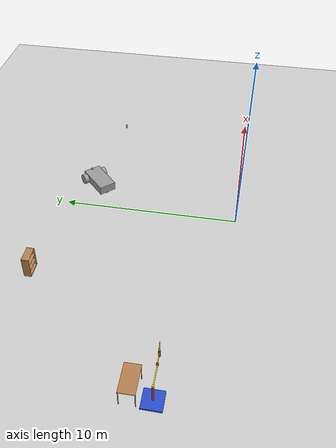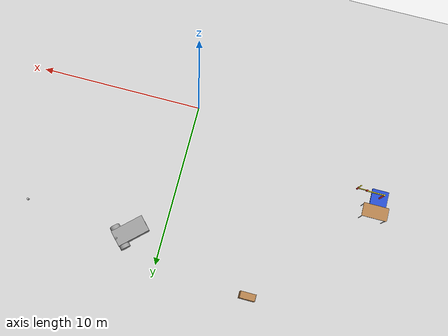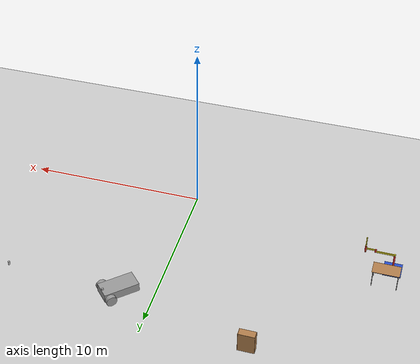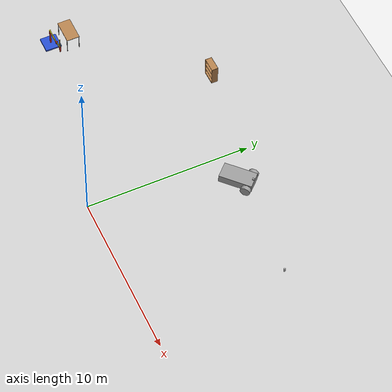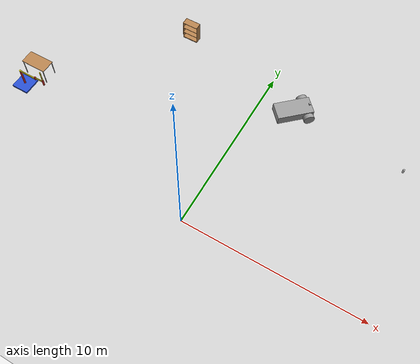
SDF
<sdf version="1.6">
 <world name="default">
  <model name="ground_plane">
   <static>1</static>
   <link name="link">
    <collision name="collision">
     <geometry><plane><normal>0 0 1</normal><size>100 100</size></plane></geometry>
     <surface>
      <contact><collide_bitmask>65535</collide_bitmask></contact>
      <friction><ode><mu>100</mu><mu2>50</mu2></ode></friction>
     </surface>
    </collision>
    <visual name="visual">
     <cast_shadows>0</cast_shadows>
     <geometry><plane><normal>0 0 1</normal><size>100 100</size></plane></geometry>
     <material>
      <script><uri>file://media/materials/scripts/gazebo.material</uri><name>Gazebo/Grey</name></script>
     </material>
    </visual>
   </link>
  </model>
  <model name="robot_car_0">
   <link name="link_1">
    <pose>-0.303354 -0.001131 0.03138 0 -0 0</pose>
    <inertial>
     <mass>1</mass>
     <inertia>
      <ixx>0.166667</ixx>
      <ixy>0</ixy>
      <ixz>0</ixz>
      <iyy>0.166667</iyy>
      <iyz>0</iyz>
      <izz>0.166667</izz>
     </inertia>
    </inertial>
    <visual name="visual">
     <geometry><box><size>2 1 0.5</size></box></geometry>
     <material>
      <lighting>1</lighting>
      <script><uri>file://media/materials/scripts/gazebo.material</uri><name>Gazebo/Grey</name></script>
      <shader type="pixel"><normal_map>__default__</normal_map></shader>
      <ambient>0.3 0.3 0.3 1</ambient>
      <diffuse>0.7 0.7 0.7 1</diffuse>
      <specular>0.01 0.01 0.01 1</specular>
      <emissive>0 0 0 1</emissive>
     </material>
    </visual>
    <collision name="collision">
     <geometry><box><size>2 1 0.5</size></box></geometry>
     <surface>
      <friction>
       <ode><mu>1</mu><mu2>1</mu2><fdir1>0 0 0</fdir1><slip1>0</slip1><slip2>0</slip2></ode>
       <torsional>
        <coefficient>1</coefficient>
        <patch_radius>0</patch_radius>
        <surface_radius>0</surface_radius>
        <use_patch_radius>1</use_patch_radius>
        <ode><slip>0</slip></ode>
       </torsional>
      </friction>
      <bounce><restitution_coefficient>0</restitution_coefficient><threshold>1e+06</threshold></bounce>
      <contact>
       <collide_without_contact>0</collide_without_contact>
       <collide_without_contact_bitmask>1</collide_without_contact_bitmask>
       <collide_bitmask>1</collide_bitmask>
       <ode>
        <soft_cfm>0</soft_cfm>
        <soft_erp>0.2</soft_erp>
        <kp>1e+13</kp>
        <kd>1</kd>
        <max_vel>0.01</max_vel>
        <min_depth>0</min_depth>
       </ode>
       <bullet>
        <split_impulse>1</split_impulse>
        <split_impulse_penetration_threshold>-0.01</split_impulse_penetration_threshold>
        <soft_cfm>0</soft_cfm>
        <soft_erp>0.2</soft_erp>
        <kp>1e+13</kp>
        <kd>1</kd>
       </bullet>
      </contact>
     </surface>
    </collision>
   </link>
   <link name="link_2">
    <pose>0.396646 -0.62616 -0.06862 1.5707 -0 0</pose>
    <inertial>
     <mass>1</mass>
     <inertia><ixx>0.145833</ixx><ixy>0</ixy><ixz>0</ixz><iyy>0.145833</iyy><iyz>0</iyz><izz>0.125</izz></inertia>
    </inertial>
    <visual name="visual">
     <geometry><cylinder><radius>0.3</radius><length>0.25</length></cylinder></geometry>
     <material>
      <lighting>1</lighting>
      <script><uri>file://media/materials/scripts/gazebo.material</uri><name>Gazebo/Grey</name></script>
      <shader type="pixel"><normal_map>__default__</normal_map></shader>
      <ambient>0.3 0.3 0.3 1</ambient>
      <diffuse>0.7 0.7 0.7 1</diffuse>
      <specular>0.01 0.01 0.01 1</specular>
      <emissive>0 0 0 1</emissive>
     </material>
    </visual>
    <collision name="collision">
     <geometry><cylinder><radius>0.3</radius><length>0.25</length></cylinder></geometry>
     <surface>
      <friction>
       <ode><mu>1</mu><mu2>1</mu2><fdir1>0 0 0</fdir1><slip1>0</slip1><slip2>0</slip2></ode>
       <torsional>
        <coefficient>1</coefficient>
        <patch_radius>0</patch_radius>
        <surface_radius>0</surface_radius>
        <use_patch_radius>1</use_patch_radius>
        <ode><slip>0</slip></ode>
       </torsional>
      </friction>
      <bounce><restitution_coefficient>0</restitution_coefficient><threshold>1e+06</threshold></bounce>
      <contact>
       <collide_without_contact>0</collide_without_contact>
       <collide_without_contact_bitmask>1</collide_without_contact_bitmask>
       <collide_bitmask>1</collide_bitmask>
       <ode>
        <soft_cfm>0</soft_cfm>
        <soft_erp>0.2</soft_erp>
        <kp>1e+13</kp>
        <kd>1</kd>
        <max_vel>0.01</max_vel>
        <min_depth>0</min_depth>
       </ode>
       <bullet>
        <split_impulse>1</split_impulse>
        <split_impulse_penetration_threshold>-0.01</split_impulse_penetration_threshold>
        <soft_cfm>0</soft_cfm>
        <soft_erp>0.2</soft_erp>
        <kp>1e+13</kp>
        <kd>1</kd>
       </bullet>
      </contact>
     </surface>
    </collision>
   </link>
   <link name="link_2_clone">
    <pose>0.396646 0.623898 -0.06862 1.5707 -0 0</pose>
    <inertial>
     <mass>1</mass>
     <inertia><ixx>0.145833</ixx><ixy>0</ixy><ixz>0</ixz><iyy>0.145833</iyy><iyz>0</iyz><izz>0.125</izz></inertia>
    </inertial>
    <visual name="visual">
     <geometry><cylinder><radius>0.3</radius><length>0.25</length></cylinder></geometry>
     <material>
      <lighting>1</lighting>
      <script><uri>file://media/materials/scripts/gazebo.material</uri><name>Gazebo/Grey</name></script>
      <shader type="pixel"><normal_map>__default__</normal_map></shader>
      <ambient>0.3 0.3 0.3 1</ambient>
      <diffuse>0.7 0.7 0.7 1</diffuse>
      <specular>0.01 0.01 0.01 1</specular>
      <emissive>0 0 0 1</emissive>
     </material>
    </visual>
    <collision name="collision">
     <geometry><cylinder><radius>0.3</radius><length>0.25</length></cylinder></geometry>
     <surface>
      <friction>
       <ode><mu>1</mu><mu2>1</mu2><fdir1>0 0 0</fdir1><slip1>0</slip1><slip2>0</slip2></ode>
       <torsional>
        <coefficient>1</coefficient>
        <patch_radius>0</patch_radius>
        <surface_radius>0</surface_radius>
        <use_patch_radius>1</use_patch_radius>
        <ode><slip>0</slip></ode>
       </torsional>
      </friction>
      <bounce><restitution_coefficient>0</restitution_coefficient><threshold>1e+06</threshold></bounce>
      <contact>
       <collide_without_contact>0</collide_without_contact>
       <collide_without_contact_bitmask>1</collide_without_contact_bitmask>
       <collide_bitmask>1</collide_bitmask>
       <ode>
        <soft_cfm>0</soft_cfm>
        <soft_erp>0.2</soft_erp>
        <kp>1e+13</kp>
        <kd>1</kd>
        <max_vel>0.01</max_vel>
        <min_depth>0</min_depth>
       </ode>
       <bullet>
        <split_impulse>1</split_impulse>
        <split_impulse_penetration_threshold>-0.01</split_impulse_penetration_threshold>
        <soft_cfm>0</soft_cfm>
        <soft_erp>0.2</soft_erp>
        <kp>1e+13</kp>
        <kd>1</kd>
       </bullet>
      </contact>
     </surface>
    </collision>
   </link>
   <link name="link_3">
    <pose>-1.10335 -0.001131 -0.16862 0 -0 0</pose>
    <inertial>
     <mass>1</mass>
     <inertia><ixx>0.1</ixx><ixy>0</ixy><ixz>0</ixz><iyy>0.1</iyy><iyz>0</iyz><izz>0.1</izz></inertia>
    </inertial>
    <visual name="visual">
     <geometry><sphere><radius>0.2</radius></sphere></geometry>
     <material>
      <lighting>1</lighting>
      <script><uri>file://media/materials/scripts/gazebo.material</uri><name>Gazebo/Grey</name></script>
      <shader type="pixel"><normal_map>__default__</normal_map></shader>
      <ambient>0.3 0.3 0.3 1</ambient>
      <diffuse>0.7 0.7 0.7 1</diffuse>
      <specular>0.01 0.01 0.01 1</specular>
      <emissive>0 0 0 1</emissive>
     </material>
    </visual>
    <collision name="collision">
     <geometry><sphere><radius>0.2</radius></sphere></geometry>
     <surface>
      <friction>
       <ode><mu>1</mu><mu2>1</mu2><fdir1>0 0 0</fdir1><slip1>0</slip1><slip2>0</slip2></ode>
       <torsional>
        <coefficient>1</coefficient>
        <patch_radius>0</patch_radius>
        <surface_radius>0</surface_radius>
        <use_patch_radius>1</use_patch_radius>
        <ode><slip>0</slip></ode>
       </torsional>
      </friction>
      <bounce><restitution_coefficient>0</restitution_coefficient><threshold>1e+06</threshold></bounce>
      <contact>
       <collide_without_contact>0</collide_without_contact>
       <collide_without_contact_bitmask>1</collide_without_contact_bitmask>
       <collide_bitmask>1</collide_bitmask>
       <ode>
        <soft_cfm>0</soft_cfm>
        <soft_erp>0.2</soft_erp>
        <kp>1e+13</kp>
        <kd>1</kd>
        <max_vel>0.01</max_vel>
        <min_depth>0</min_depth>
       </ode>
       <bullet>
        <split_impulse>1</split_impulse>
        <split_impulse_penetration_threshold>-0.01</split_impulse_penetration_threshold>
        <soft_cfm>0</soft_cfm>
        <soft_erp>0.2</soft_erp>
        <kp>1e+13</kp>
        <kd>1</kd>
       </bullet>
      </contact>
     </surface>
    </collision>
   </link>
   <model name="depth_camera">
    <link name="link">
     <pose>0 0 0.05 0 -0 0</pose>
     <inertial>
      <mass>0.1</mass>
      <inertia>
       <ixx>0.000166667</ixx>
       <iyy>0.000166667</iyy>
       <izz>0.000166667</izz>
       <ixy>0</ixy>
       <ixz>0</ixz>
       <iyz>0</iyz>
      </inertia>
     </inertial>
     <collision name="collision"><geometry><box><size>0.1 0.1 0.1</size></box></geometry></collision>
     <visual name="visual"><geometry><box><size>0.1 0.1 0.1</size></box></geometry></visual>
     <sensor name="camera" type="depth">
      <camera name="__default__">
       <horizontal_fov>1.047</horizontal_fov>
       <image><width>320</width><height>240</height></image>
       <clip><near>0.1</near><far>100</far></clip>
      </camera>
      <always_on>1</always_on>
      <update_rate>30</update_rate>
      <visualize>1</visualize>
     </sensor>
    </link>
    <pose>0.613416 0.004522 0.27448 0 -0 0</pose>
   </model>
   <joint name="link_1_JOINT_0" type="revolute">
    <parent>link_1</parent>
    <child>link_2</child>
    <axis>
     <xyz>0 0 1</xyz>
     <use_parent_model_frame>0</use_parent_model_frame>
     <limit>
      <lower>-1.79769e+308</lower>
      <upper>1.79769e+308</upper>
      <effort>-1</effort>
      <velocity>-1</velocity>
     </limit>
     <dynamics>
      <spring_reference>0</spring_reference>
      <spring_stiffness>0</spring_stiffness>
      <damping>0</damping>
     </dynamics>
    </axis>
    <physics>
     <ode><limit><cfm>0</cfm><erp>0.2</erp></limit><suspension><cfm>0</cfm><erp>0.2</erp></suspension></ode>
    </physics>
   </joint>
   <joint name="link_1_JOINT_1" type="revolute">
    <parent>link_1</parent>
    <child>link_2_clone</child>
    <axis>
     <xyz>0 0 1</xyz>
     <use_parent_model_frame>0</use_parent_model_frame>
     <limit>
      <lower>-1.79769e+308</lower>
      <upper>1.79769e+308</upper>
      <effort>-1</effort>
      <velocity>-1</velocity>
     </limit>
     <dynamics>
      <spring_reference>0</spring_reference>
      <spring_stiffness>0</spring_stiffness>
      <damping>0</damping>
     </dynamics>
    </axis>
    <physics>
     <ode><limit><cfm>0</cfm><erp>0.2</erp></limit><suspension><cfm>0</cfm><erp>0.2</erp></suspension></ode>
    </physics>
   </joint>
   <joint name="link_1_JOINT_3" type="ball">
    <parent>link_1</parent>
    <child>link_3</child>
    <physics>
     <ode><limit><cfm>0</cfm><erp>0.2</erp></limit><suspension><cfm>0</cfm><erp>0.2</erp></suspension></ode>
    </physics>
   </joint>
   <joint name="link_1_JOINT_5" type="fixed">
    <parent>link_1</parent>
    <child>depth_camera::link</child>
    <pose>0 0 0 0 -0.01 0</pose>
    <physics>
     <ode><limit><cfm>0</cfm><erp>0.2</erp></limit><suspension><cfm>0</cfm><erp>0.2</erp></suspension></ode>
    </physics>
   </joint>
   <static>0</static>
   <pose>2.13165 8.70709 0.368629 0 -8e-06 0.755658</pose>
  </model>
  <model name="bookshelf">
   <static>1</static>
   <link name="link">
    <inertial><mass>1</mass></inertial>
    <collision name="back">
     <pose>0 0.005 0.6 0 -0 0</pose>
     <geometry><box><size>0.9 0.01 1.2</size></box></geometry>
    </collision>
    <visual name="visual1">
     <pose>0 0.005 0.6 0 -0 0</pose>
     <geometry><box><size>0.9 0.01 1.2</size></box></geometry>
     <material>
      <script><uri>file://media/materials/scripts/gazebo.material</uri><name>Gazebo/Wood</name></script>
     </material>
    </visual>
    <collision name="left_side">
     <pose>0.45 -0.195 0.6 0 -0 0</pose>
     <geometry><box><size>0.02 0.4 1.2</size></box></geometry>
    </collision>
    <visual name="visual2">
     <pose>0.45 -0.195 0.6 0 -0 0</pose>
     <geometry><box><size>0.02 0.4 1.2</size></box></geometry>
     <material>
      <script><uri>file://media/materials/scripts/gazebo.material</uri><name>Gazebo/Wood</name></script>
     </material>
    </visual>
    <collision name="right_side">
     <pose>-0.45 -0.195 0.6 0 -0 0</pose>
     <geometry><box><size>0.02 0.4 1.2</size></box></geometry>
    </collision>
    <visual name="visual3">
     <pose>-0.45 -0.195 0.6 0 -0 0</pose>
     <geometry><box><size>0.02 0.4 1.2</size></box></geometry>
     <material>
      <script><uri>file://media/materials/scripts/gazebo.material</uri><name>Gazebo/Wood</name></script>
     </material>
    </visual>
    <collision name="bottom">
     <pose>0 -0.195 0.03 0 -0 0</pose>
     <geometry><box><size>0.88 0.4 0.06</size></box></geometry>
    </collision>
    <visual name="visual4">
     <pose>0 -0.195 0.03 0 -0 0</pose>
     <geometry><box><size>0.88 0.4 0.06</size></box></geometry>
     <material>
      <script><uri>file://media/materials/scripts/gazebo.material</uri><name>Gazebo/Wood</name></script>
     </material>
    </visual>
    <collision name="top">
     <pose>0 -0.195 1.19 0 -0 0</pose>
     <geometry><box><size>0.88 0.4 0.02</size></box></geometry>
    </collision>
    <visual name="visual5">
     <pose>0 -0.195 1.19 0 -0 0</pose>
     <geometry><box><size>0.88 0.4 0.02</size></box></geometry>
     <material>
      <script><uri>file://media/materials/scripts/gazebo.material</uri><name>Gazebo/Wood</name></script>
     </material>
    </visual>
    <collision name="low_shelf">
     <pose>0 -0.195 0.43 0 -0 0</pose>
     <geometry><box><size>0.88 0.4 0.02</size></box></geometry>
    </collision>
    <visual name="visual6">
     <pose>0 -0.195 0.43 0 -0 0</pose>
     <geometry><box><size>0.88 0.4 0.02</size></box></geometry>
     <material>
      <script><uri>file://media/materials/scripts/gazebo.material</uri><name>Gazebo/Wood</name></script>
     </material>
    </visual>
    <collision name="high_shelf">
     <pose>0 -0.195 0.8 0 -0 0</pose>
     <geometry><box><size>0.88 0.4 0.02</size></box></geometry>
    </collision>
    <visual name="visual7">
     <pose>0 -0.195 0.8 0 -0 0</pose>
     <geometry><box><size>0.88 0.4 0.02</size></box></geometry>
     <material>
      <script><uri>file://media/materials/scripts/gazebo.material</uri><name>Gazebo/Wood</name></script>
     </material>
    </visual>
   </link>
   <pose>-5.63915 10.5886 0 0 -0 0</pose>
  </model>
  <model name="beer">
   <link name="link">
    <pose>0 0 0.115 0 -0 0</pose>
    <inertial>
     <mass>0.39</mass>
     <inertia><ixx>0.00058</ixx><ixy>0</ixy><ixz>0</ixz><iyy>0.00058</iyy><iyz>0</iyz><izz>0.00019</izz></inertia>
    </inertial>
    <collision name="collision">
     <geometry><cylinder><radius>0.055</radius><length>0.23</length></cylinder></geometry>
    </collision>
    <visual name="visual">
     <geometry><cylinder><radius>0.055</radius><length>0.23</length></cylinder></geometry>
     <material>
      <script>
       <uri>model://beer/materials/scripts</uri>
       <uri>model://beer/materials/textures</uri>
       <name>Beer/Diffuse</name>
      </script>
     </material>
    </visual>
   </link>
   <pose>8.44687 8.20103 -2e-06 1e-06 -0 -2.1e-05</pose>
  </model>
  <model name="simple_arm">
   <link name="arm_base">
    <inertial>
     <pose>0 0 0.00099 0 -0 0</pose>
     <inertia><ixx>1.11</ixx><ixy>0</ixy><ixz>0</ixz><iyy>100.11</iyy><iyz>0</iyz><izz>1.01</izz></inertia>
     <mass>101</mass>
    </inertial>
    <collision name="arm_base_geom">
     <pose>0 0 0.05 0 -0 0</pose>
     <geometry><box><size>1 1 0.1</size></box></geometry>
    </collision>
    <visual name="arm_base_geom_visual">
     <pose>0 0 0.05 0 -0 0</pose>
     <geometry><box><size>1 1 0.1</size></box></geometry>
     <material>
      <script><uri>file://media/materials/scripts/gazebo.material</uri><name>Gazebo/Blue</name></script>
     </material>
    </visual>
    <collision name="arm_base_geom_arm_trunk">
     <pose>0 0 0.6 0 -0 0</pose>
     <geometry><cylinder><radius>0.05</radius><length>1</length></cylinder></geometry>
    </collision>
    <visual name="arm_base_geom_arm_trunk_visual">
     <pose>0 0 0.6 0 -0 0</pose>
     <geometry><cylinder><radius>0.05</radius><length>1</length></cylinder></geometry>
     <material>
      <script><uri>file://media/materials/scripts/gazebo.material</uri><name>Gazebo/Red</name></script>
     </material>
    </visual>
   </link>
   <link name="arm_shoulder_pan">
    <pose>0 0 1.1 0 -0 0</pose>
    <inertial>
     <pose>0.045455 0 0 0 -0 0</pose>
     <inertia><ixx>0.011</ixx><ixy>0</ixy><ixz>0</ixz><iyy>0.0225</iyy><iyz>0</iyz><izz>0.0135</izz></inertia>
     <mass>1.1</mass>
    </inertial>
    <collision name="arm_shoulder_pan_geom">
     <pose>0 0 0.05 0 -0 0</pose>
     <geometry><cylinder><radius>0.05</radius><length>0.1</length></cylinder></geometry>
    </collision>
    <visual name="arm_shoulder_pan_geom_visual">
     <pose>0 0 0.05 0 -0 0</pose>
     <geometry><cylinder><radius>0.05</radius><length>0.1</length></cylinder></geometry>
     <material>
      <script><uri>file://media/materials/scripts/gazebo.material</uri><name>Gazebo/Yellow</name></script>
     </material>
    </visual>
    <collision name="arm_shoulder_pan_geom_arm_shoulder">
     <pose>0.55 0 0.05 0 -0 0</pose>
     <geometry><box><size>1 0.05 0.1</size></box></geometry>
    </collision>
    <visual name="arm_shoulder_pan_geom_arm_shoulder_visual">
     <pose>0.55 0 0.05 0 -0 0</pose>
     <geometry><box><size>1 0.05 0.1</size></box></geometry>
     <material>
      <script><uri>file://media/materials/scripts/gazebo.material</uri><name>Gazebo/Yellow</name></script>
     </material>
    </visual>
   </link>
   <link name="arm_elbow_pan">
    <pose>1.05 0 1.1 0 -0 0</pose>
    <inertial>
     <pose>0.0875 0 0.083333 0 -0 0</pose>
     <inertia>
      <ixx>0.031</ixx>
      <ixy>0</ixy>
      <ixz>0.005</ixz>
      <iyy>0.07275</iyy>
      <iyz>0</iyz>
      <izz>0.04475</izz>
     </inertia>
     <mass>1.2</mass>
    </inertial>
    <collision name="arm_elbow_pan_geom">
     <pose>0 0 0.1 0 -0 0</pose>
     <geometry><cylinder><radius>0.05</radius><length>0.2</length></cylinder></geometry>
    </collision>
    <visual name="arm_elbow_pan_geom_visual">
     <pose>0 0 0.1 0 -0 0</pose>
     <geometry><cylinder><radius>0.05</radius><length>0.2</length></cylinder></geometry>
     <material>
      <script><uri>file://media/materials/scripts/gazebo.material</uri><name>Gazebo/Red</name></script>
     </material>
    </visual>
    <collision name="arm_elbow_pan_geom_arm_elbow">
     <pose>0.3 0 0.15 0 -0 0</pose>
     <geometry><box><size>0.5 0.03 0.1</size></box></geometry>
    </collision>
    <visual name="arm_elbow_pan_geom_arm_elbow_visual">
     <pose>0.3 0 0.15 0 -0 0</pose>
     <geometry><box><size>0.5 0.03 0.1</size></box></geometry>
     <material>
      <script><uri>file://media/materials/scripts/gazebo.material</uri><name>Gazebo/Yellow</name></script>
     </material>
    </visual>
    <collision name="arm_elbow_pan_geom_arm_wrist">
     <pose>0.55 0 0.15 0 -0 0</pose>
     <geometry><cylinder><radius>0.05</radius><length>0.3</length></cylinder></geometry>
    </collision>
    <visual name="arm_elbow_pan_geom_arm_wrist_visual">
     <pose>0.55 0 0.15 0 -0 0</pose>
     <geometry><cylinder><radius>0.05</radius><length>0.3</length></cylinder></geometry>
     <material>
      <script><uri>file://media/materials/scripts/gazebo.material</uri><name>Gazebo/Red</name></script>
     </material>
    </visual>
   </link>
   <link name="arm_wrist_lift">
    <pose>1.6 0 1.05 0 -0 0</pose>
    <inertial>
     <inertia><ixx>0.01</ixx><ixy>0</ixy><ixz>0</ixz><iyy>0.01</iyy><iyz>0</iyz><izz>0.001</izz></inertia>
     <mass>0.1</mass>
    </inertial>
    <collision name="arm_wrist_lift_geom">
     <pose>0 0 0.5 0 -0 0</pose>
     <geometry><cylinder><radius>0.03</radius><length>1</length></cylinder></geometry>
    </collision>
    <visual name="arm_wrist_lift_geom_visual">
     <pose>0 0 0.5 0 -0 0</pose>
     <geometry><cylinder><radius>0.03</radius><length>1</length></cylinder></geometry>
     <material>
      <script><uri>file://media/materials/scripts/gazebo.material</uri><name>Gazebo/Yellow</name></script>
     </material>
    </visual>
   </link>
   <link name="arm_wrist_roll">
    <pose>1.6 0 1 0 -0 0</pose>
    <inertial>
     <inertia><ixx>0.01</ixx><ixy>0</ixy><ixz>0</ixz><iyy>0.01</iyy><iyz>0</iyz><izz>0.001</izz></inertia>
     <mass>0.1</mass>
    </inertial>
    <collision name="arm_wrist_roll_geom">
     <pose>0 0 0.025 0 -0 0</pose>
     <geometry><cylinder><radius>0.05</radius><length>0.05</length></cylinder></geometry>
    </collision>
    <visual name="arm_wrist_roll_geom_visual">
     <pose>0 0 0.025 0 -0 0</pose>
     <geometry><cylinder><radius>0.05</radius><length>0.05</length></cylinder></geometry>
     <material>
      <script><uri>file://media/materials/scripts/gazebo.material</uri><name>Gazebo/Red</name></script>
     </material>
    </visual>
   </link>
   <joint name="arm_shoulder_pan_joint" type="revolute">
    <parent>arm_base</parent>
    <child>arm_shoulder_pan</child>
    <axis>
     <dynamics>
      <damping>1</damping>
      <friction>0</friction>
      <spring_reference>0</spring_reference>
      <spring_stiffness>0</spring_stiffness>
     </dynamics>
     <xyz>0 0 1</xyz>
     <use_parent_model_frame>1</use_parent_model_frame>
     <limit><lower>-1e+16</lower><upper>1e+16</upper></limit>
    </axis>
   </joint>
   <joint name="arm_elbow_pan_joint" type="revolute">
    <parent>arm_shoulder_pan</parent>
    <child>arm_elbow_pan</child>
    <axis>
     <dynamics>
      <damping>1</damping>
      <friction>0</friction>
      <spring_reference>0</spring_reference>
      <spring_stiffness>0</spring_stiffness>
     </dynamics>
     <xyz>0 0 1</xyz>
     <use_parent_model_frame>1</use_parent_model_frame>
     <limit><lower>-1e+16</lower><upper>1e+16</upper></limit>
    </axis>
   </joint>
   <joint name="arm_wrist_lift_joint" type="prismatic">
    <parent>arm_elbow_pan</parent>
    <child>arm_wrist_lift</child>
    <axis>
     <dynamics>
      <damping>1</damping>
      <friction>0</friction>
      <spring_reference>0</spring_reference>
      <spring_stiffness>0</spring_stiffness>
     </dynamics>
     <limit><lower>-0.8</lower><upper>0.1</upper></limit>
     <xyz>0 0 1</xyz>
     <use_parent_model_frame>1</use_parent_model_frame>
    </axis>
   </joint>
   <joint name="arm_wrist_roll_joint" type="revolute">
    <parent>arm_wrist_lift</parent>
    <child>arm_wrist_roll</child>
    <axis>
     <dynamics>
      <damping>1</damping>
      <friction>0</friction>
      <spring_reference>0</spring_reference>
      <spring_stiffness>0</spring_stiffness>
     </dynamics>
     <limit><lower>-2.99999</lower><upper>2.99999</upper></limit>
     <xyz>0 0 1</xyz>
     <use_parent_model_frame>1</use_parent_model_frame>
    </axis>
   </joint>
   <pose>-11.956 2.69436 0 0 0 -0.000907</pose>
  </model>
  <model name="table_0">
   <static>1</static>
   <link name="link">
    <collision name="surface">
     <pose>0 0 1 0 -0 0</pose>
     <geometry><box><size>1.5 0.8 0.03</size></box></geometry>
     <surface><friction><ode><mu>0.6</mu><mu2>0.6</mu2></ode></friction></surface>
    </collision>
    <visual name="visual1">
     <pose>0 0 1 0 -0 0</pose>
     <geometry><box><size>1.5 0.8 0.03</size></box></geometry>
     <material>
      <script><uri>file://media/materials/scripts/gazebo.material</uri><name>Gazebo/Wood</name></script>
     </material>
    </visual>
    <collision name="front_left_leg">
     <pose>0.68 0.38 0.5 0 -0 0</pose>
     <geometry><cylinder><radius>0.02</radius><length>1</length></cylinder></geometry>
    </collision>
    <visual name="front_left_leg">
     <pose>0.68 0.38 0.5 0 -0 0</pose>
     <geometry><cylinder><radius>0.02</radius><length>1</length></cylinder></geometry>
     <material>
      <script><uri>file://media/materials/scripts/gazebo.material</uri><name>Gazebo/Grey</name></script>
     </material>
    </visual>
    <collision name="front_right_leg">
     <pose>0.68 -0.38 0.5 0 -0 0</pose>
     <geometry><cylinder><radius>0.02</radius><length>1</length></cylinder></geometry>
    </collision>
    <visual name="front_right_leg">
     <pose>0.68 -0.38 0.5 0 -0 0</pose>
     <geometry><cylinder><radius>0.02</radius><length>1</length></cylinder></geometry>
     <material>
      <script><uri>file://media/materials/scripts/gazebo.material</uri><name>Gazebo/Grey</name></script>
     </material>
    </visual>
    <collision name="back_right_leg">
     <pose>-0.68 -0.38 0.5 0 -0 0</pose>
     <geometry><cylinder><radius>0.02</radius><length>1</length></cylinder></geometry>
    </collision>
    <visual name="back_right_leg">
     <pose>-0.68 -0.38 0.5 0 -0 0</pose>
     <geometry><cylinder><radius>0.02</radius><length>1</length></cylinder></geometry>
     <material>
      <script><uri>file://media/materials/scripts/gazebo.material</uri><name>Gazebo/Grey</name></script>
     </material>
    </visual>
    <collision name="back_left_leg">
     <pose>-0.68 0.38 0.5 0 -0 0</pose>
     <geometry><cylinder><radius>0.02</radius><length>1</length></cylinder></geometry>
    </collision>
    <visual name="back_left_leg">
     <pose>-0.68 0.38 0.5 0 -0 0</pose>
     <geometry><cylinder><radius>0.02</radius><length>1</length></cylinder></geometry>
     <material>
      <script><uri>file://media/materials/scripts/gazebo.material</uri><name>Gazebo/Grey</name></script>
     </material>
    </visual>
   </link>
   <pose>-11.6764 3.7629 0 0 -0 0</pose>
  </model>
 </world>
</sdf>
